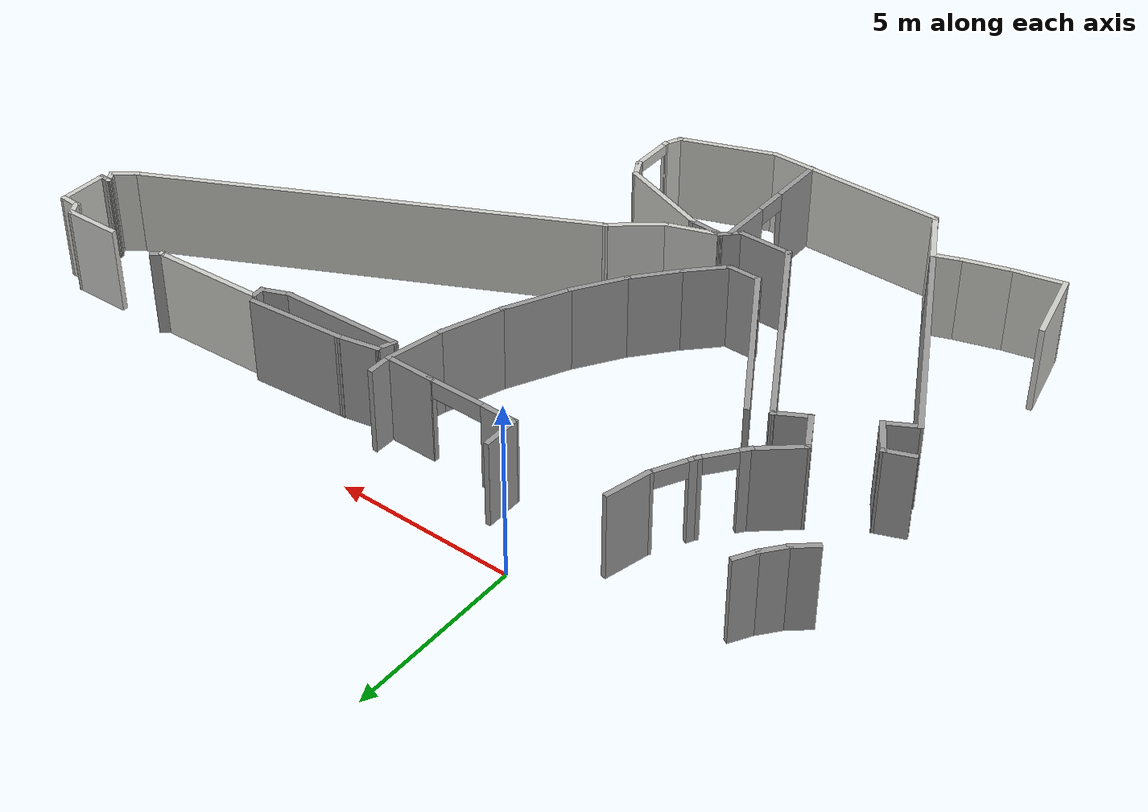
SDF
<sdf version="1.7">
 <model name="model">
  <pose>-4.1341 -0.059214 0 0 -0 0</pose>
  <link name="Wall_175">
   <collision name="Wall_175_Collision">
    <geometry><box><size>0.887115 0.15 2.5</size></box></geometry>
    <pose>0 0 1.25 0 -0 0</pose>
   </collision>
   <visual name="Wall_175_Visual">
    <pose>0 0 1.25 0 -0 0</pose>
    <geometry><box><size>0.887115 0.15 2.5</size></box></geometry>
    <material>
     <script><uri>file://media/materials/scripts/gazebo.material</uri><name>Gazebo/Grey</name></script>
     <ambient>1 1 1 1</ambient>
    </material>
    <meta><layer>0</layer></meta>
   </visual>
   <pose>-2.05807 -6.54657 0 0 -0 0.380506</pose>
  </link>
  <link name="Wall_176">
   <collision name="Wall_176_Collision">
    <geometry><box><size>1.13341 0.15 2.5</size></box></geometry>
    <pose>0 0 1.25 0 -0 0</pose>
   </collision>
   <visual name="Wall_176_Visual">
    <pose>0 0 1.25 0 -0 0</pose>
    <geometry><box><size>1.13341 0.15 2.5</size></box></geometry>
    <material>
     <script><uri>file://media/materials/scripts/gazebo.material</uri><name>Gazebo/Grey</name></script>
     <ambient>1 1 1 1</ambient>
    </material>
    <meta><layer>0</layer></meta>
   </visual>
   <pose>-1.45732 -6.82794 0 0 -0 -1.01711</pose>
  </link>
  <link name="Wall_177">
   <collision name="Wall_177_Collision">
    <geometry><box><size>1.02156 0.15 2.5</size></box></geometry>
    <pose>0 0 1.25 0 -0 0</pose>
   </collision>
   <visual name="Wall_177_Visual">
    <pose>0 0 1.25 0 -0 0</pose>
    <geometry><box><size>1.02156 0.15 2.5</size></box></geometry>
    <material>
     <script><uri>file://media/materials/scripts/gazebo.material</uri><name>Gazebo/Grey</name></script>
     <ambient>1 1 1 1</ambient>
    </material>
    <meta><layer>0</layer></meta>
   </visual>
   <pose>-1.57899 -7.4591 0 0 -0 -2.6311</pose>
  </link>
  <link name="Wall_180">
   <collision name="Wall_180_Collision">
    <geometry><box><size>7.09459 0.15 2.5</size></box></geometry>
    <pose>0 0 1.25 0 -0 0</pose>
   </collision>
   <visual name="Wall_180_Visual">
    <pose>0 0 1.25 0 -0 0</pose>
    <geometry><box><size>7.09459 0.15 2.5</size></box></geometry>
    <material>
     <script><uri>file://media/materials/scripts/gazebo.material</uri><name>Gazebo/Grey</name></script>
     <ambient>1 1 1 1</ambient>
    </material>
    <meta><layer>0</layer></meta>
   </visual>
   <pose>-0.326679 -10.7366 0 0 -0 -1.08132</pose>
  </link>
  <link name="Wall_182">
   <collision name="Wall_182_Collision">
    <geometry><box><size>1.35009 0.15 2.5</size></box></geometry>
    <pose>0 0 1.25 0 -0 0</pose>
   </collision>
   <visual name="Wall_182_Visual">
    <pose>0 0 1.25 0 -0 0</pose>
    <geometry><box><size>1.35009 0.15 2.5</size></box></geometry>
    <material>
     <script><uri>file://media/materials/scripts/gazebo.material</uri><name>Gazebo/Grey</name></script>
     <ambient>1 1 1 1</ambient>
    </material>
    <meta><layer>0</layer></meta>
   </visual>
   <pose>2.18096 -1.91168 0 0 -0 -1.80764</pose>
  </link>
  <link name="Wall_183">
   <pose>1.75857 -3.03804 0 0 -0 -2.04915</pose>
   <visual name="Wall_183_Visual_0">
    <pose>-0.599077 0 1.25 0 -0 0</pose>
    <geometry><box><size>0.175306 0.15 2.5</size></box></geometry>
    <material>
     <script><uri>file://media/materials/scripts/gazebo.material</uri><name>Gazebo/Grey</name></script>
     <ambient>1 1 1 1</ambient>
    </material>
    <meta><layer>0</layer></meta>
   </visual>
   <collision name="Wall_183_Collision_0">
    <geometry><box><size>0.175306 0.15 2.5</size></box></geometry>
    <pose>-0.599077 0 1.25 0 -0 0</pose>
   </collision>
   <visual name="Wall_183_Visual_1">
    <pose>0.537653 0 1.25 0 -0 0</pose>
    <geometry><box><size>0.298155 0.15 2.5</size></box></geometry>
    <material>
     <script><uri>file://media/materials/scripts/gazebo.material</uri><name>Gazebo/Grey</name></script>
     <ambient>1 1 1 1</ambient>
    </material>
    <meta><layer>0</layer></meta>
   </visual>
   <collision name="Wall_183_Collision_1">
    <geometry><box><size>0.298155 0.15 2.5</size></box></geometry>
    <pose>0.537653 0 1.25 0 -0 0</pose>
   </collision>
   <visual name="Wall_183_Visual_2">
    <pose>-0.061425 0 2.25 0 -0 0</pose>
    <geometry><box><size>0.9 0.15 0.5</size></box></geometry>
    <material>
     <script><uri>file://media/materials/scripts/gazebo.material</uri><name>Gazebo/Grey</name></script>
     <ambient>1 1 1 1</ambient>
    </material>
    <meta><layer>0</layer></meta>
   </visual>
   <collision name="Wall_183_Collision_2">
    <geometry><box><size>0.9 0.15 0.5</size></box></geometry>
    <pose>-0.061425 0 2.25 0 -0 0</pose>
   </collision>
  </link>
  <link name="Wall_184">
   <pose>1.08477 -4.094 0 0 -0 -2.22364</pose>
   <visual name="Wall_184_Visual_0">
    <pose>-0.623774 0 1.25 0 -0 0</pose>
    <geometry><box><size>0.193801 0.15 2.5</size></box></geometry>
    <material>
     <script><uri>file://media/materials/scripts/gazebo.material</uri><name>Gazebo/Grey</name></script>
     <ambient>1 1 1 1</ambient>
    </material>
    <meta><layer>0</layer></meta>
   </visual>
   <collision name="Wall_184_Collision_0">
    <geometry><box><size>0.193801 0.15 2.5</size></box></geometry>
    <pose>-0.623774 0 1.25 0 -0 0</pose>
   </collision>
   <visual name="Wall_184_Visual_1">
    <pose>0.5469 0 1.25 0 -0 0</pose>
    <geometry><box><size>0.347547 0.15 2.5</size></box></geometry>
    <material>
     <script><uri>file://media/materials/scripts/gazebo.material</uri><name>Gazebo/Grey</name></script>
     <ambient>1 1 1 1</ambient>
    </material>
    <meta><layer>0</layer></meta>
   </visual>
   <collision name="Wall_184_Collision_1">
    <geometry><box><size>0.347547 0.15 2.5</size></box></geometry>
    <pose>0.5469 0 1.25 0 -0 0</pose>
   </collision>
   <visual name="Wall_184_Visual_2">
    <pose>-0.076873 0 2.25 0 -0 0</pose>
    <geometry><box><size>0.9 0.15 0.5</size></box></geometry>
    <material>
     <script><uri>file://media/materials/scripts/gazebo.material</uri><name>Gazebo/Grey</name></script>
     <ambient>1 1 1 1</ambient>
    </material>
    <meta><layer>0</layer></meta>
   </visual>
   <collision name="Wall_184_Collision_2">
    <geometry><box><size>0.9 0.15 0.5</size></box></geometry>
    <pose>-0.076873 0 2.25 0 -0 0</pose>
   </collision>
  </link>
  <link name="Wall_185">
   <collision name="Wall_185_Collision">
    <geometry><box><size>1.4602 0.15 2.5</size></box></geometry>
    <pose>0 0 1.25 0 -0 0</pose>
   </collision>
   <visual name="Wall_185_Visual">
    <pose>0 0 1.25 0 -0 0</pose>
    <geometry><box><size>1.4602 0.15 2.5</size></box></geometry>
    <material>
     <script><uri>file://media/materials/scripts/gazebo.material</uri><name>Gazebo/Grey</name></script>
     <ambient>1 1 1 1</ambient>
    </material>
    <meta><layer>0</layer></meta>
   </visual>
   <pose>0.196945 -5.0353 0 0 -0 -2.4288</pose>
  </link>
  <link name="Wall_187">
   <collision name="Wall_187_Collision">
    <geometry><box><size>1.24375 0.15 2.5</size></box></geometry>
    <pose>0 0 1.25 0 -0 0</pose>
   </collision>
   <visual name="Wall_187_Visual">
    <pose>0 0 1.25 0 -0 0</pose>
    <geometry><box><size>1.24375 0.15 2.5</size></box></geometry>
    <material>
     <script><uri>file://media/materials/scripts/gazebo.material</uri><name>Gazebo/Grey</name></script>
     <ambient>1 1 1 1</ambient>
    </material>
    <meta><layer>0</layer></meta>
   </visual>
   <pose>-0.033447 -5.94196 0 0 -0 -1.06447</pose>
  </link>
  <link name="Wall_190">
   <collision name="Wall_190_Collision">
    <geometry><box><size>0.15 0.15 2.5</size></box></geometry>
    <pose>0 0 1.25 0 -0 0</pose>
   </collision>
   <visual name="Wall_190_Visual">
    <pose>0 0 1.25 0 -0 0</pose>
    <geometry><box><size>0.15 0.15 2.5</size></box></geometry>
    <material>
     <script><uri>file://media/materials/scripts/gazebo.material</uri><name>Gazebo/Grey</name></script>
     <ambient>1 1 1 1</ambient>
    </material>
    <meta><layer>0</layer></meta>
   </visual>
   <pose>1.00568 -5.98544 0 0 -0 0</pose>
  </link>
  <link name="Wall_192">
   <collision name="Wall_192_Collision">
    <geometry><box><size>0.15 0.15 2.5</size></box></geometry>
    <pose>0 0 1.25 0 -0 0</pose>
   </collision>
   <visual name="Wall_192_Visual">
    <pose>0 0 1.25 0 -0 0</pose>
    <geometry><box><size>0.15 0.15 2.5</size></box></geometry>
    <material>
     <script><uri>file://media/materials/scripts/gazebo.material</uri><name>Gazebo/Grey</name></script>
     <ambient>0 0 0 1</ambient>
    </material>
    <meta><layer>0</layer></meta>
   </visual>
   <pose>1.00568 -5.98544 0 0 -0 0</pose>
  </link>
  <link name="Wall_193">
   <collision name="Wall_193_Collision">
    <geometry><box><size>1.03768 0.15 2.5</size></box></geometry>
    <pose>0 0 1.25 0 -0 0</pose>
   </collision>
   <visual name="Wall_193_Visual">
    <pose>0 0 1.25 0 -0 0</pose>
    <geometry><box><size>1.03768 0.15 2.5</size></box></geometry>
    <material>
     <script><uri>file://media/materials/scripts/gazebo.material</uri><name>Gazebo/Grey</name></script>
     <ambient>1 1 1 1</ambient>
    </material>
    <meta><layer>0</layer></meta>
   </visual>
   <pose>0.618727 -6.20283 0 0 -0 0.511856</pose>
  </link>
  <link name="Wall_196">
   <collision name="Wall_196_Collision">
    <geometry><box><size>6.65835 0.15 2.5</size></box></geometry>
    <pose>0 0 1.25 0 -0 0</pose>
   </collision>
   <visual name="Wall_196_Visual">
    <pose>0 0 1.25 0 -0 0</pose>
    <geometry><box><size>6.65835 0.15 2.5</size></box></geometry>
    <material>
     <script><uri>file://media/materials/scripts/gazebo.material</uri><name>Gazebo/Grey</name></script>
     <ambient>1 1 1 1</ambient>
    </material>
    <meta><layer>0</layer></meta>
   </visual>
   <pose>2.64198 -8.7983 0 0 -0 -1.04393</pose>
  </link>
  <link name="Wall_197">
   <collision name="Wall_197_Collision">
    <geometry><box><size>1.59491 0.15 2.5</size></box></geometry>
    <pose>0 0 1.25 0 -0 0</pose>
   </collision>
   <visual name="Wall_197_Visual">
    <pose>0 0 1.25 0 -0 0</pose>
    <geometry><box><size>1.59491 0.15 2.5</size></box></geometry>
    <material>
     <script><uri>file://media/materials/scripts/gazebo.material</uri><name>Gazebo/Grey</name></script>
     <ambient>1 1 1 1</ambient>
    </material>
    <meta><layer>0</layer></meta>
   </visual>
   <pose>5.00069 -11.6112 0 0 -0 0</pose>
  </link>
  <link name="Wall_199">
   <collision name="Wall_199_Collision">
    <geometry><box><size>0.713098 0.15 2.5</size></box></geometry>
    <pose>0 0 1.25 0 -0 0</pose>
   </collision>
   <visual name="Wall_199_Visual">
    <pose>0 0 1.25 0 -0 0</pose>
    <geometry><box><size>0.713098 0.15 2.5</size></box></geometry>
    <material>
     <script><uri>file://media/materials/scripts/gazebo.material</uri><name>Gazebo/Grey</name></script>
     <ambient>1 1 1 1</ambient>
    </material>
    <meta><layer>0</layer></meta>
   </visual>
   <pose>5.9241 -11.414 0 0 -0 0.775769</pose>
  </link>
  <link name="Wall_204">
   <pose>5.9425 -13.3805 0 0 -0 1.5708</pose>
   <visual name="Wall_204_Visual_0">
    <pose>-1.17213 0 1.25 0 -0 0</pose>
    <geometry><box><size>1.65574 0.15 2.5</size></box></geometry>
    <material>
     <script><uri>file://media/materials/scripts/gazebo.material</uri><name>Gazebo/Grey</name></script>
     <ambient>1 1 1 1</ambient>
    </material>
    <meta><layer>0</layer></meta>
   </visual>
   <collision name="Wall_204_Collision_0">
    <geometry><box><size>1.65574 0.15 2.5</size></box></geometry>
    <pose>-1.17213 0 1.25 0 -0 0</pose>
   </collision>
   <visual name="Wall_204_Visual_1">
    <pose>1.27787 0 1.25 0 -0 0</pose>
    <geometry><box><size>1.44426 0.15 2.5</size></box></geometry>
    <material>
     <script><uri>file://media/materials/scripts/gazebo.material</uri><name>Gazebo/Grey</name></script>
     <ambient>1 1 1 1</ambient>
    </material>
    <meta><layer>0</layer></meta>
   </visual>
   <collision name="Wall_204_Collision_1">
    <geometry><box><size>1.44426 0.15 2.5</size></box></geometry>
    <pose>1.27787 0 1.25 0 -0 0</pose>
   </collision>
   <visual name="Wall_204_Visual_2">
    <pose>0.105736 0 2.25 0 -0 0</pose>
    <geometry><box><size>0.9 0.15 0.5</size></box></geometry>
    <material>
     <script><uri>file://media/materials/scripts/gazebo.material</uri><name>Gazebo/Grey</name></script>
     <ambient>1 1 1 1</ambient>
    </material>
    <meta><layer>0</layer></meta>
   </visual>
   <collision name="Wall_204_Collision_2">
    <geometry><box><size>0.9 0.15 0.5</size></box></geometry>
    <pose>0.105736 0 2.25 0 -0 0</pose>
   </collision>
  </link>
  <link name="Wall_212">
   <collision name="Wall_212_Collision">
    <geometry><box><size>1.46175 0.15 2.5</size></box></geometry>
    <pose>0 0 1.25 0 -0 0</pose>
   </collision>
   <visual name="Wall_212_Visual">
    <pose>0 0 1.25 0 -0 0</pose>
    <geometry><box><size>1.46175 0.15 2.5</size></box></geometry>
    <material>
     <script><uri>file://media/materials/scripts/gazebo.material</uri><name>Gazebo/Grey</name></script>
     <ambient>1 1 1 1</ambient>
    </material>
    <meta><layer>0</layer></meta>
   </visual>
   <pose>8.77888 -2.04713 0 0 -0 0</pose>
  </link>
  <link name="Wall_213">
   <collision name="Wall_213_Collision">
    <geometry><box><size>1.72597 0.15 2.5</size></box></geometry>
    <pose>0 0 1.25 0 -0 0</pose>
   </collision>
   <visual name="Wall_213_Visual">
    <pose>0 0 1.25 0 -0 0</pose>
    <geometry><box><size>1.72597 0.15 2.5</size></box></geometry>
    <material>
     <script><uri>file://media/materials/scripts/gazebo.material</uri><name>Gazebo/Grey</name></script>
     <ambient>1 1 1 1</ambient>
    </material>
    <meta><layer>0</layer></meta>
   </visual>
   <pose>9.27571 -2.81563 0 0 -0 -1.77403</pose>
  </link>
  <link name="Wall_214">
   <collision name="Wall_214_Collision">
    <geometry><box><size>1.91476 0.15 2.5</size></box></geometry>
    <pose>0 0 1.25 0 -0 0</pose>
   </collision>
   <visual name="Wall_214_Visual">
    <pose>0 0 1.25 0 -0 0</pose>
    <geometry><box><size>1.91476 0.15 2.5</size></box></geometry>
    <material>
     <script><uri>file://media/materials/scripts/gazebo.material</uri><name>Gazebo/Grey</name></script>
     <ambient>1 1 1 1</ambient>
    </material>
    <meta><layer>0</layer></meta>
   </visual>
   <pose>8.81934 -4.41818 0 0 -0 -1.91449</pose>
  </link>
  <link name="Wall_215">
   <collision name="Wall_215_Collision">
    <geometry><box><size>2.02138 0.15 2.5</size></box></geometry>
    <pose>0 0 1.25 0 -0 0</pose>
   </collision>
   <visual name="Wall_215_Visual">
    <pose>0 0 1.25 0 -0 0</pose>
    <geometry><box><size>2.02138 0.15 2.5</size></box></geometry>
    <material>
     <script><uri>file://media/materials/scripts/gazebo.material</uri><name>Gazebo/Grey</name></script>
     <ambient>1 1 1 1</ambient>
    </material>
    <meta><layer>0</layer></meta>
   </visual>
   <pose>8.10465 -6.08641 0 0 -0 -2.03314</pose>
  </link>
  <link name="Wall_217">
   <collision name="Wall_217_Collision">
    <geometry><box><size>1.66874 0.15 2.5</size></box></geometry>
    <pose>0 0 1.25 0 -0 0</pose>
   </collision>
   <visual name="Wall_217_Visual">
    <pose>0 0 1.25 0 -0 0</pose>
    <geometry><box><size>1.66874 0.15 2.5</size></box></geometry>
    <material>
     <script><uri>file://media/materials/scripts/gazebo.material</uri><name>Gazebo/Grey</name></script>
     <ambient>1 1 1 1</ambient>
    </material>
    <meta><layer>0</layer></meta>
   </visual>
   <pose>7.27665 -7.56263 0 0 -0 -2.14213</pose>
  </link>
  <link name="Wall_218">
   <collision name="Wall_218_Collision">
    <geometry><box><size>1.57541 0.15 2.5</size></box></geometry>
    <pose>0 0 1.25 0 -0 0</pose>
   </collision>
   <visual name="Wall_218_Visual">
    <pose>0 0 1.25 0 -0 0</pose>
    <geometry><box><size>1.57541 0.15 2.5</size></box></geometry>
    <material>
     <script><uri>file://media/materials/scripts/gazebo.material</uri><name>Gazebo/Grey</name></script>
     <ambient>1 1 1 1</ambient>
    </material>
    <meta><layer>0</layer></meta>
   </visual>
   <pose>6.40975 -8.74891 0 0 -0 -2.26553</pose>
  </link>
  <link name="Wall_219">
   <collision name="Wall_219_Collision">
    <geometry><box><size>1.37617 0.15 2.5</size></box></geometry>
    <pose>0 0 1.25 0 -0 0</pose>
   </collision>
   <visual name="Wall_219_Visual">
    <pose>0 0 1.25 0 -0 0</pose>
    <geometry><box><size>1.37617 0.15 2.5</size></box></geometry>
    <material>
     <script><uri>file://media/materials/scripts/gazebo.material</uri><name>Gazebo/Grey</name></script>
     <ambient>1 1 1 1</ambient>
    </material>
    <meta><layer>0</layer></meta>
   </visual>
   <pose>5.52765 -9.73748 0 0 -0 -2.33865</pose>
  </link>
  <link name="Wall_220">
   <collision name="Wall_220_Collision">
    <geometry><box><size>1 0.15 2.5</size></box></geometry>
    <pose>0 0 1.25 0 -0 0</pose>
   </collision>
   <visual name="Wall_220_Visual">
    <pose>0 0 1.25 0 -0 0</pose>
    <geometry><box><size>1 0.15 2.5</size></box></geometry>
    <material>
     <script><uri>file://media/materials/scripts/gazebo.material</uri><name>Gazebo/Grey</name></script>
     <ambient>1 1 1 1</ambient>
    </material>
    <meta><layer>0</layer></meta>
   </visual>
   <pose>4.6768 -10.1785 0 0 -0 3.14159</pose>
  </link>
  <link name="Wall_221">
   <collision name="Wall_221_Collision">
    <geometry><box><size>5.30224 0.15 2.5</size></box></geometry>
    <pose>0 0 1.25 0 -0 0</pose>
   </collision>
   <visual name="Wall_221_Visual">
    <pose>0 0 1.25 0 -0 0</pose>
    <geometry><box><size>5.30224 0.15 2.5</size></box></geometry>
    <material>
     <script><uri>file://media/materials/scripts/gazebo.material</uri><name>Gazebo/Grey</name></script>
     <ambient>1 1 1 1</ambient>
    </material>
    <meta><layer>0</layer></meta>
   </visual>
   <pose>2.92019 -7.97326 0 0 -0 2.11403</pose>
  </link>
  <link name="Wall_223">
   <pose>6.86071 -2.04841 0 0 -0 3.14159</pose>
   <visual name="Wall_223_Visual_0">
    <pose>-1.26472 0 1.25 0 -0 0</pose>
    <geometry><box><size>0.220557 0.15 2.5</size></box></geometry>
    <material>
     <script><uri>file://media/materials/scripts/gazebo.material</uri><name>Gazebo/Grey</name></script>
     <ambient>1 1 1 1</ambient>
    </material>
    <meta><layer>0</layer></meta>
   </visual>
   <collision name="Wall_223_Collision_0">
    <geometry><box><size>0.220557 0.15 2.5</size></box></geometry>
    <pose>-1.26472 0 1.25 0 -0 0</pose>
   </collision>
   <visual name="Wall_223_Visual_1">
    <pose>0.857841 0 1.25 0 -0 0</pose>
    <geometry><box><size>1.03432 0.15 2.5</size></box></geometry>
    <material>
     <script><uri>file://media/materials/scripts/gazebo.material</uri><name>Gazebo/Grey</name></script>
     <ambient>1 1 1 1</ambient>
    </material>
    <meta><layer>0</layer></meta>
   </visual>
   <collision name="Wall_223_Collision_1">
    <geometry><box><size>1.03432 0.15 2.5</size></box></geometry>
    <pose>0.857841 0 1.25 0 -0 0</pose>
   </collision>
   <visual name="Wall_223_Visual_2">
    <pose>-0.406881 0 2.25 0 -0 0</pose>
    <geometry><box><size>1.49513 0.15 0.5</size></box></geometry>
    <material>
     <script><uri>file://media/materials/scripts/gazebo.material</uri><name>Gazebo/Grey</name></script>
     <ambient>1 1 1 1</ambient>
    </material>
    <meta><layer>0</layer></meta>
   </visual>
   <collision name="Wall_223_Collision_2">
    <geometry><box><size>1.49513 0.15 0.5</size></box></geometry>
    <pose>-0.406881 0 2.25 0 -0 0</pose>
   </collision>
  </link>
  <link name="Wall_227">
   <collision name="Wall_227_Collision">
    <geometry><box><size>1.12106 0.15 2.5</size></box></geometry>
    <pose>0 0 1.25 0 -0 0</pose>
   </collision>
   <visual name="Wall_227_Visual">
    <pose>0 0 1.25 0 -0 0</pose>
    <geometry><box><size>1.12106 0.15 2.5</size></box></geometry>
    <material>
     <script><uri>file://media/materials/scripts/gazebo.material</uri><name>Gazebo/Grey</name></script>
     <ambient>1 1 1 1</ambient>
    </material>
    <meta><layer>0</layer></meta>
   </visual>
   <pose>5.55415 -1.56292 0 0 -0 -1.55727</pose>
  </link>
  <link name="Wall_229">
   <collision name="Wall_229_Collision">
    <geometry><box><size>0.75 0.15 2.5</size></box></geometry>
    <pose>0 0 1.25 0 -0 0</pose>
   </collision>
   <visual name="Wall_229_Visual">
    <pose>0 0 1.25 0 -0 0</pose>
    <geometry><box><size>0.75 0.15 2.5</size></box></geometry>
    <material>
     <script><uri>file://media/materials/scripts/gazebo.material</uri><name>Gazebo/Grey</name></script>
     <ambient>1 1 1 1</ambient>
    </material>
    <meta><layer>0</layer></meta>
   </visual>
   <pose>9.43476 -1.74386 0 0 -0 1.5708</pose>
  </link>
  <link name="Wall_24">
   <collision name="Wall_24_Collision">
    <geometry><box><size>2.8 0.15 2.5</size></box></geometry>
    <pose>0 0 1.25 0 -0 0</pose>
   </collision>
   <visual name="Wall_24_Visual">
    <pose>0 0 1.25 0 -0 0</pose>
    <geometry><box><size>2.8 0.15 2.5</size></box></geometry>
    <material>
     <script><uri>file://media/materials/scripts/gazebo.material</uri><name>Gazebo/Grey</name></script>
     <ambient>1 1 1 1</ambient>
    </material>
    <meta><layer>0</layer></meta>
   </visual>
   <pose>12.2713 -1.81009 0 0 -0 -3.05469</pose>
  </link>
  <link name="Wall_25">
   <collision name="Wall_25_Collision">
    <geometry><box><size>1.24238 0.15 2.5</size></box></geometry>
    <pose>0 0 1.25 0 -0 0</pose>
   </collision>
   <visual name="Wall_25_Visual">
    <pose>0 0 1.25 0 -0 0</pose>
    <geometry><box><size>1.24238 0.15 2.5</size></box></geometry>
    <material>
     <script><uri>file://media/materials/scripts/gazebo.material</uri><name>Gazebo/Grey</name></script>
     <ambient>1 1 1 1</ambient>
    </material>
    <meta><layer>0</layer></meta>
   </visual>
   <pose>10.4163 -2.03509 0 0 -0 -2.93881</pose>
  </link>
  <link name="Wall_27">
   <collision name="Wall_27_Collision">
    <geometry><box><size>0.603733 0.15 2.5</size></box></geometry>
    <pose>0 0 1.25 0 -0 0</pose>
   </collision>
   <visual name="Wall_27_Visual">
    <pose>0 0 1.25 0 -0 0</pose>
    <geometry><box><size>0.603733 0.15 2.5</size></box></geometry>
    <material>
     <script><uri>file://media/materials/scripts/gazebo.material</uri><name>Gazebo/Grey</name></script>
     <ambient>1 1 1 1</ambient>
    </material>
    <meta><layer>0</layer></meta>
   </visual>
   <pose>9.80722 -2.35952 0 0 -0 -1.90344</pose>
  </link>
  <link name="Wall_28">
   <collision name="Wall_28_Collision">
    <geometry><box><size>3.51448 0.15 2.5</size></box></geometry>
    <pose>0 0 1.25 0 -0 0</pose>
   </collision>
   <visual name="Wall_28_Visual">
    <pose>0 0 1.25 0 -0 0</pose>
    <geometry><box><size>3.51448 0.15 2.5</size></box></geometry>
    <material>
     <script><uri>file://media/materials/scripts/gazebo.material</uri><name>Gazebo/Grey</name></script>
     <ambient>1 1 1 1</ambient>
    </material>
    <meta><layer>0</layer></meta>
   </visual>
   <pose>11.4141 -2.51106 0 0 -0 0.037398</pose>
  </link>
  <link name="Wall_31">
   <collision name="Wall_31_Collision">
    <geometry><box><size>0.875248 0.15 2.5</size></box></geometry>
    <pose>0 0 1.25 0 -0 0</pose>
   </collision>
   <visual name="Wall_31_Visual">
    <pose>0 0 1.25 0 -0 0</pose>
    <geometry><box><size>0.875248 0.15 2.5</size></box></geometry>
    <material>
     <script><uri>file://media/materials/scripts/gazebo.material</uri><name>Gazebo/Grey</name></script>
     <ambient>1 1 1 1</ambient>
    </material>
    <meta><layer>0</layer></meta>
   </visual>
   <pose>13.4295 -2.30809 0 0 -0 0.39661</pose>
  </link>
  <link name="Wall_311">
   <collision name="Wall_311_Collision">
    <geometry><box><size>0.75 0.15 2.5</size></box></geometry>
    <pose>0 0 1.25 0 -0 0</pose>
   </collision>
   <visual name="Wall_311_Visual">
    <pose>0 0 1.25 0 -0 0</pose>
    <geometry><box><size>0.75 0.15 2.5</size></box></geometry>
    <material>
     <script><uri>file://media/materials/scripts/gazebo.material</uri><name>Gazebo/Grey</name></script>
     <ambient>1 1 1 1</ambient>
    </material>
    <meta><layer>0</layer></meta>
   </visual>
   <pose>-1.21691 -1.60609 0 0 -0 -2.0944</pose>
  </link>
  <link name="Wall_312">
   <collision name="Wall_312_Collision">
    <geometry><box><size>0.85304 0.15 2.5</size></box></geometry>
    <pose>0 0 1.25 0 -0 0</pose>
   </collision>
   <visual name="Wall_312_Visual">
    <pose>0 0 1.25 0 -0 0</pose>
    <geometry><box><size>0.85304 0.15 2.5</size></box></geometry>
    <material>
     <script><uri>file://media/materials/scripts/gazebo.material</uri><name>Gazebo/Grey</name></script>
     <ambient>1 1 1 1</ambient>
    </material>
    <meta><layer>0</layer></meta>
   </visual>
   <pose>-1.58538 -2.14128 0 0 -0 -2.24147</pose>
  </link>
  <link name="Wall_313">
   <collision name="Wall_313_Collision">
    <geometry><box><size>0.786149 0.15 2.5</size></box></geometry>
    <pose>0 0 1.25 0 -0 0</pose>
   </collision>
   <visual name="Wall_313_Visual">
    <pose>0 0 1.25 0 -0 0</pose>
    <geometry><box><size>0.786149 0.15 2.5</size></box></geometry>
    <material>
     <script><uri>file://media/materials/scripts/gazebo.material</uri><name>Gazebo/Grey</name></script>
     <ambient>1 1 1 1</ambient>
    </material>
    <meta><layer>0</layer></meta>
   </visual>
   <pose>-2.04536 -2.62366 0 0 -0 -2.43297</pose>
  </link>
  <link name="Wall_32">
   <collision name="Wall_32_Collision">
    <geometry><box><size>0.44165 0.15 2.5</size></box></geometry>
    <pose>0 0 1.25 0 -0 0</pose>
   </collision>
   <visual name="Wall_32_Visual">
    <pose>0 0 1.25 0 -0 0</pose>
    <geometry><box><size>0.44165 0.15 2.5</size></box></geometry>
    <material>
     <script><uri>file://media/materials/scripts/gazebo.material</uri><name>Gazebo/Grey</name></script>
     <ambient>1 1 1 1</ambient>
    </material>
    <meta><layer>0</layer></meta>
   </visual>
   <pose>13.7583 -2.02221 0 0 -0 1.60999</pose>
  </link>
  <link name="Wall_34">
   <collision name="Wall_34_Collision">
    <geometry><box><size>3.2685 0.15 2.5</size></box></geometry>
    <pose>0 0 1.25 0 -0 0</pose>
   </collision>
   <visual name="Wall_34_Visual">
    <pose>0 0 1.25 0 -0 0</pose>
    <geometry><box><size>3.2685 0.15 2.5</size></box></geometry>
    <material>
     <script><uri>file://media/materials/scripts/gazebo.material</uri><name>Gazebo/CeilingTiled</name></script>
     <ambient>0.964706 1 0.972549 1</ambient>
    </material>
    <meta><layer>0</layer></meta>
   </visual>
   <pose>15.3097 -1.79513 0 0 -0 0.052154</pose>
  </link>
  <link name="Wall_35">
   <collision name="Wall_35_Collision">
    <geometry><box><size>0.392084 0.15 2.5</size></box></geometry>
    <pose>0 0 1.25 0 -0 0</pose>
   </collision>
   <visual name="Wall_35_Visual">
    <pose>0 0 1.25 0 -0 0</pose>
    <geometry><box><size>0.392084 0.15 2.5</size></box></geometry>
    <material>
     <script><uri>file://media/materials/scripts/gazebo.material</uri><name>Gazebo/Grey</name></script>
     <ambient>0.964706 1 0.972549 1</ambient>
    </material>
    <meta><layer>0</layer></meta>
   </visual>
   <pose>16.9613 -1.63823 0 0 -0 0.674741</pose>
  </link>
  <link name="Wall_39">
   <collision name="Wall_39_Collision">
    <geometry><box><size>1.63299 0.15 2.5</size></box></geometry>
    <pose>0 0 1.25 0 -0 0</pose>
   </collision>
   <visual name="Wall_39_Visual">
    <pose>0 0 1.25 0 -0 0</pose>
    <geometry><box><size>1.63299 0.15 2.5</size></box></geometry>
    <material>
     <script><uri>file://media/materials/scripts/gazebo.material</uri><name>Gazebo/CeilingTiled</name></script>
     <ambient>0.964706 1 0.972549 1</ambient>
    </material>
    <meta><layer>0</layer></meta>
   </visual>
   <pose>19.3621 -1.60043 0 0 -0 0.030603</pose>
  </link>
  <link name="Wall_40">
   <collision name="Wall_40_Collision">
    <geometry><box><size>0.512082 0.15 2.5</size></box></geometry>
    <pose>0 0 1.25 0 -0 0</pose>
   </collision>
   <visual name="Wall_40_Visual">
    <pose>0 0 1.25 0 -0 0</pose>
    <geometry><box><size>0.512082 0.15 2.5</size></box></geometry>
    <material>
     <script><uri>file://media/materials/scripts/gazebo.material</uri><name>Gazebo/CeilingTiled</name></script>
     <ambient>0.964706 1 0.972549 1</ambient>
    </material>
    <meta><layer>0</layer></meta>
   </visual>
   <pose>20.1901 -1.73653 0 0 -0 -1.06978</pose>
  </link>
  <link name="Wall_41">
   <collision name="Wall_41_Collision">
    <geometry><box><size>0.62661 0.15 2.5</size></box></geometry>
    <pose>0 0 1.25 0 -0 0</pose>
   </collision>
   <visual name="Wall_41_Visual">
    <pose>0 0 1.25 0 -0 0</pose>
    <geometry><box><size>0.62661 0.15 2.5</size></box></geometry>
    <material>
     <script><uri>file://media/materials/scripts/gazebo.material</uri><name>Gazebo/CeilingTiled</name></script>
     <ambient>0.964706 1 0.972549 1</ambient>
    </material>
    <meta><layer>0</layer></meta>
   </visual>
   <pose>20.5152 -1.90288 0 0 -0 -0.031735</pose>
  </link>
  <link name="Wall_42">
   <collision name="Wall_42_Collision">
    <geometry><box><size>1.46578 0.15 2.5</size></box></geometry>
    <pose>0 0 1.25 0 -0 0</pose>
   </collision>
   <visual name="Wall_42_Visual">
    <pose>0 0 1.25 0 -0 0</pose>
    <geometry><box><size>1.46578 0.15 2.5</size></box></geometry>
    <material>
     <script><uri>file://media/materials/scripts/gazebo.material</uri><name>Gazebo/CeilingTiled</name></script>
     <ambient>0.964706 1 0.972549 1</ambient>
    </material>
    <meta><layer>0</layer></meta>
   </visual>
   <pose>20.7458 -2.56829 0 0 -0 -1.58229</pose>
  </link>
  <link name="Wall_43">
   <collision name="Wall_43_Collision">
    <geometry><box><size>0.422212 0.15 2.5</size></box></geometry>
    <pose>0 0 1.25 0 -0 0</pose>
   </collision>
   <visual name="Wall_43_Visual">
    <pose>0 0 1.25 0 -0 0</pose>
    <geometry><box><size>0.422212 0.15 2.5</size></box></geometry>
    <material>
     <script><uri>file://media/materials/scripts/gazebo.material</uri><name>Gazebo/Grey</name></script>
     <ambient>1 1 1 1</ambient>
    </material>
    <meta><layer>0</layer></meta>
   </visual>
   <pose>20.6022 -3.22614 0 0 -0 3.14159</pose>
  </link>
  <link name="Wall_44">
   <collision name="Wall_44_Collision">
    <geometry><box><size>0.477158 0.15 2.5</size></box></geometry>
    <pose>0 0 1.25 0 -0 0</pose>
   </collision>
   <visual name="Wall_44_Visual">
    <pose>0 0 1.25 0 -0 0</pose>
    <geometry><box><size>0.477158 0.15 2.5</size></box></geometry>
    <material>
     <script><uri>file://media/materials/scripts/gazebo.material</uri><name>Gazebo/CeilingTiled</name></script>
     <ambient>0.964706 1 0.972549 1</ambient>
    </material>
    <meta><layer>0</layer></meta>
   </visual>
   <pose>20.5568 -3.36224 0 0 -0 -0.982794</pose>
  </link>
  <link name="Wall_46">
   <collision name="Wall_46_Collision">
    <geometry><box><size>0.829776 0.15 2.5</size></box></geometry>
    <pose>0 0 1.25 0 -0 0</pose>
   </collision>
   <visual name="Wall_46_Visual">
    <pose>0 0 1.25 0 -0 0</pose>
    <geometry><box><size>0.829776 0.15 2.5</size></box></geometry>
    <material>
     <script><uri>file://media/materials/scripts/gazebo.material</uri><name>Gazebo/CeilingTiled</name></script>
     <ambient>0.964706 1 0.972549 1</ambient>
    </material>
    <meta><layer>0</layer></meta>
   </visual>
   <pose>20.3768 -3.70389 0 0 -0 -2.49216</pose>
  </link>
  <link name="Wall_48">
   <collision name="Wall_48_Collision">
    <geometry><box><size>12.9371 0.15 2.5</size></box></geometry>
    <pose>0 0 1.25 0 -0 0</pose>
   </collision>
   <visual name="Wall_48_Visual">
    <pose>0 0 1.25 0 -0 0</pose>
    <geometry><box><size>12.9371 0.15 2.5</size></box></geometry>
    <material>
     <script><uri>file://media/materials/scripts/gazebo.material</uri><name>Gazebo/CeilingTiled</name></script>
     <ambient>0.964706 1 0.972549 1</ambient>
    </material>
    <meta><layer>0</layer></meta>
   </visual>
   <pose>14.4129 -6.81893 0 0 -0 -2.66914</pose>
  </link>
  <link name="Wall_49">
   <collision name="Wall_49_Collision">
    <geometry><box><size>1.70812 0.15 2.5</size></box></geometry>
    <pose>0 0 1.25 0 -0 0</pose>
   </collision>
   <visual name="Wall_49_Visual">
    <pose>0 0 1.25 0 -0 0</pose>
    <geometry><box><size>1.70812 0.15 2.5</size></box></geometry>
    <material>
     <script><uri>file://media/materials/scripts/gazebo.material</uri><name>Gazebo/CeilingTiled</name></script>
     <ambient>0.964706 1 0.972549 1</ambient>
    </material>
    <meta><layer>0</layer></meta>
   </visual>
   <pose>8.11633 -10.2212 0 0 -0 -2.45677</pose>
  </link>
  <link name="Wall_50">
   <collision name="Wall_50_Collision">
    <geometry><box><size>1.62612 0.15 2.5</size></box></geometry>
    <pose>0 0 1.25 0 -0 0</pose>
   </collision>
   <visual name="Wall_50_Visual">
    <pose>0 0 1.25 0 -0 0</pose>
    <geometry><box><size>1.62612 0.15 2.5</size></box></geometry>
    <material>
     <script><uri>file://media/materials/scripts/gazebo.material</uri><name>Gazebo/CeilingTiled</name></script>
     <ambient>0.964706 1 0.972549 1</ambient>
    </material>
    <meta><layer>0</layer></meta>
   </visual>
   <pose>6.81901 -10.9654 0 0 -0 -2.79399</pose>
  </link>
  <link name="Wall_51">
   <collision name="Wall_51_Collision">
    <geometry><box><size>1.05712 0.15 2.5</size></box></geometry>
    <pose>0 0 1.25 0 -0 0</pose>
   </collision>
   <visual name="Wall_51_Visual">
    <pose>0 0 1.25 0 -0 0</pose>
    <geometry><box><size>1.05712 0.15 2.5</size></box></geometry>
    <material>
     <script><uri>file://media/materials/scripts/gazebo.material</uri><name>Gazebo/Grey</name></script>
     <ambient>0.964706 1 0.972549 1</ambient>
    </material>
    <meta><layer>0</layer></meta>
   </visual>
   <pose>6.57765 -11.247 0 0 -0 -0.066568</pose>
  </link>
  <link name="Wall_53">
   <collision name="Wall_53_Collision">
    <geometry><box><size>2.80305 0.15 2.5</size></box></geometry>
    <pose>0 0 1.25 0 -0 0</pose>
   </collision>
   <visual name="Wall_53_Visual">
    <pose>0 0 1.25 0 -0 0</pose>
    <geometry><box><size>2.80305 0.15 2.5</size></box></geometry>
    <material>
     <script><uri>file://media/materials/scripts/gazebo.material</uri><name>Gazebo/CeilingTiled</name></script>
     <ambient>0.964706 1 0.972549 1</ambient>
    </material>
    <meta><layer>0</layer></meta>
   </visual>
   <pose>8.27876 -11.7253 0 0 -0 -0.344555</pose>
  </link>
  <link name="Wall_54">
   <collision name="Wall_54_Collision">
    <geometry><box><size>0.68108 0.15 2.5</size></box></geometry>
    <pose>0 0 1.25 0 -0 0</pose>
   </collision>
   <visual name="Wall_54_Visual">
    <pose>0 0 1.25 0 -0 0</pose>
    <geometry><box><size>0.68108 0.15 2.5</size></box></geometry>
    <material>
     <script><uri>file://media/materials/scripts/gazebo.material</uri><name>Gazebo/CeilingTiled</name></script>
     <ambient>1 1 1 1</ambient>
    </material>
    <meta><layer>0</layer></meta>
   </visual>
   <pose>9.65208 -12.4077 0 0 -0 -1.08168</pose>
  </link>
  <link name="Wall_55">
   <pose>9.78063 -13.2622 0 0 -0 -1.5647</pose>
   <visual name="Wall_55_Visual_0">
    <pose>-0.617424 0 1.25 0 -0 0</pose>
    <geometry><box><size>0.15525 0.15 2.5</size></box></geometry>
    <material>
     <script><uri>file://media/materials/scripts/gazebo.material</uri><name>Gazebo/CeilingTiled</name></script>
     <ambient>0.964706 1 0.972549 1</ambient>
    </material>
    <meta><layer>0</layer></meta>
   </visual>
   <collision name="Wall_55_Collision_0">
    <geometry><box><size>0.15525 0.15 2.5</size></box></geometry>
    <pose>-0.617424 0 1.25 0 -0 0</pose>
   </collision>
   <visual name="Wall_55_Visual_1">
    <pose>0.077625 0 0.25 0 -0 0</pose>
    <geometry><box><size>1.23485 0.15 0.5</size></box></geometry>
    <material>
     <script><uri>file://media/materials/scripts/gazebo.material</uri><name>Gazebo/CeilingTiled</name></script>
     <ambient>0.964706 1 0.972549 1</ambient>
    </material>
    <meta><layer>0</layer></meta>
   </visual>
   <collision name="Wall_55_Collision_1">
    <geometry><box><size>1.23485 0.15 0.5</size></box></geometry>
    <pose>0.077625 0 0.25 0 -0 0</pose>
   </collision>
   <visual name="Wall_55_Visual_2">
    <pose>0.612625 0 1.5 0 -0 0</pose>
    <geometry><box><size>0.164848 0.15 2</size></box></geometry>
    <material>
     <script><uri>file://media/materials/scripts/gazebo.material</uri><name>Gazebo/CeilingTiled</name></script>
     <ambient>0.964706 1 0.972549 1</ambient>
    </material>
    <meta><layer>0</layer></meta>
   </visual>
   <collision name="Wall_55_Collision_2">
    <geometry><box><size>0.164848 0.15 2</size></box></geometry>
    <pose>0.612625 0 1.5 0 -0 0</pose>
   </collision>
   <visual name="Wall_55_Visual_3">
    <pose>-0.004799 0 2.35 0 -0 0</pose>
    <geometry><box><size>1.07 0.15 0.3</size></box></geometry>
    <material>
     <script><uri>file://media/materials/scripts/gazebo.material</uri><name>Gazebo/CeilingTiled</name></script>
     <ambient>0.964706 1 0.972549 1</ambient>
    </material>
    <meta><layer>0</layer></meta>
   </visual>
   <collision name="Wall_55_Collision_3">
    <geometry><box><size>1.07 0.15 0.3</size></box></geometry>
    <pose>-0.004799 0 2.35 0 -0 0</pose>
   </collision>
  </link>
  <link name="Wall_57">
   <collision name="Wall_57_Collision">
    <geometry><box><size>0.624626 0.15 2.5</size></box></geometry>
    <pose>0 0 1.25 0 -0 0</pose>
   </collision>
   <visual name="Wall_57_Visual">
    <pose>0 0 1.25 0 -0 0</pose>
    <geometry><box><size>0.624626 0.15 2.5</size></box></geometry>
    <material>
     <script><uri>file://media/materials/scripts/gazebo.material</uri><name>Gazebo/CeilingTiled</name></script>
     <ambient>0.964706 1 0.972549 1</ambient>
    </material>
    <meta><layer>0</layer></meta>
   </visual>
   <pose>9.69387 -14.1016 0 0 -0 -1.96225</pose>
  </link>
  <link name="Wall_58">
   <collision name="Wall_58_Collision">
    <geometry><box><size>2.829 0.15 2.5</size></box></geometry>
    <pose>0 0 1.25 0 -0 0</pose>
   </collision>
   <visual name="Wall_58_Visual">
    <pose>0 0 1.25 0 -0 0</pose>
    <geometry><box><size>2.829 0.15 2.5</size></box></geometry>
    <material>
     <script><uri>file://media/materials/scripts/gazebo.material</uri><name>Gazebo/CeilingTiled</name></script>
     <ambient>0.964706 1 0.972549 1</ambient>
    </material>
    <meta><layer>0</layer></meta>
   </visual>
   <pose>8.35404 -14.8042 0 0 -0 -2.77248</pose>
  </link>
  <link name="Wall_60">
   <collision name="Wall_60_Collision">
    <geometry><box><size>5.14219 0.15 2.5</size></box></geometry>
    <pose>0 0 1.25 0 -0 0</pose>
   </collision>
   <visual name="Wall_60_Visual">
    <pose>0 0 1.25 0 -0 0</pose>
    <geometry><box><size>5.14219 0.15 2.5</size></box></geometry>
    <material>
     <script><uri>file://media/materials/scripts/gazebo.material</uri><name>Gazebo/CeilingTiled</name></script>
     <ambient>0.964706 1 0.972549 1</ambient>
    </material>
    <meta><layer>0</layer></meta>
   </visual>
   <pose>4.60867 -15.2849 0 0 -0 3.14057</pose>
  </link>
  <link name="Wall_61">
   <collision name="Wall_61_Collision">
    <geometry><box><size>1.83664 0.15 2.5</size></box></geometry>
    <pose>0 0 1.25 0 -0 0</pose>
   </collision>
   <visual name="Wall_61_Visual">
    <pose>0 0 1.25 0 -0 0</pose>
    <geometry><box><size>1.83664 0.15 2.5</size></box></geometry>
    <material>
     <script><uri>file://media/materials/scripts/gazebo.material</uri><name>Gazebo/CeilingTiled</name></script>
     <ambient>0.964706 1 0.972549 1</ambient>
    </material>
    <meta><layer>0</layer></meta>
   </visual>
   <pose>1.70922 -14.5418 0 0 -0 2.06952</pose>
  </link>
  <link name="Wall_62">
   <collision name="Wall_62_Collision">
    <geometry><box><size>0.903941 0.15 2.5</size></box></geometry>
    <pose>0 0 1.25 0 -0 0</pose>
   </collision>
   <visual name="Wall_62_Visual">
    <pose>0 0 1.25 0 -0 0</pose>
    <geometry><box><size>0.903941 0.15 2.5</size></box></geometry>
    <material>
     <script><uri>file://media/materials/scripts/gazebo.material</uri><name>Gazebo/CeilingTiled</name></script>
     <ambient>0.964706 1 0.972549 1</ambient>
    </material>
    <meta><layer>0</layer></meta>
   </visual>
   <pose>0.955392 -13.94 0 0 -0 -2.76434</pose>
  </link>
  <link name="Wall_63">
   <collision name="Wall_63_Collision">
    <geometry><box><size>1.45097 0.15 2.5</size></box></geometry>
    <pose>0 0 1.25 0 -0 0</pose>
   </collision>
   <visual name="Wall_63_Visual">
    <pose>0 0 1.25 0 -0 0</pose>
    <geometry><box><size>1.45097 0.15 2.5</size></box></geometry>
    <material>
     <script><uri>file://media/materials/scripts/gazebo.material</uri><name>Gazebo/CeilingTiled</name></script>
     <ambient>0.964706 1 0.972549 1</ambient>
    </material>
    <meta><layer>0</layer></meta>
   </visual>
   <pose>-0.016645 -14.2707 0 0 -0 -2.84235</pose>
  </link>
  <link name="Wall_64">
   <collision name="Wall_64_Collision">
    <geometry><box><size>1.49414 0.15 2.5</size></box></geometry>
    <pose>0 0 1.25 0 -0 0</pose>
   </collision>
   <visual name="Wall_64_Visual">
    <pose>0 0 1.25 0 -0 0</pose>
    <geometry><box><size>1.49414 0.15 2.5</size></box></geometry>
    <material>
     <script><uri>file://media/materials/scripts/gazebo.material</uri><name>Gazebo/CeilingTiled</name></script>
     <ambient>0.964706 1 0.972549 1</ambient>
    </material>
    <meta><layer>0</layer></meta>
   </visual>
   <pose>-1.29286 -14.6145 0 0 -0 -2.91332</pose>
  </link>
  <link name="Wall_65">
   <collision name="Wall_65_Collision">
    <geometry><box><size>2.2357 0.15 2.5</size></box></geometry>
    <pose>0 0 1.25 0 -0 0</pose>
   </collision>
   <visual name="Wall_65_Visual">
    <pose>0 0 1.25 0 -0 0</pose>
    <geometry><box><size>2.2357 0.15 2.5</size></box></geometry>
    <material>
     <script><uri>file://media/materials/scripts/gazebo.material</uri><name>Gazebo/CeilingTiled</name></script>
     <ambient>0.964706 1 0.972549 1</ambient>
    </material>
    <meta><layer>0</layer></meta>
   </visual>
   <pose>-2.17232 -13.7483 0 0 -0 1.78809</pose>
  </link>
  <static>1</static>
 </model>
</sdf>
